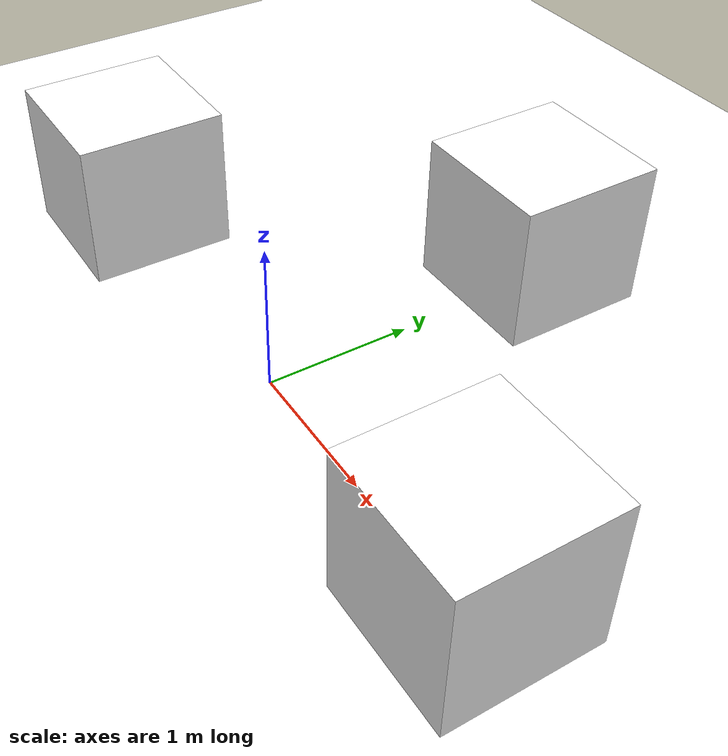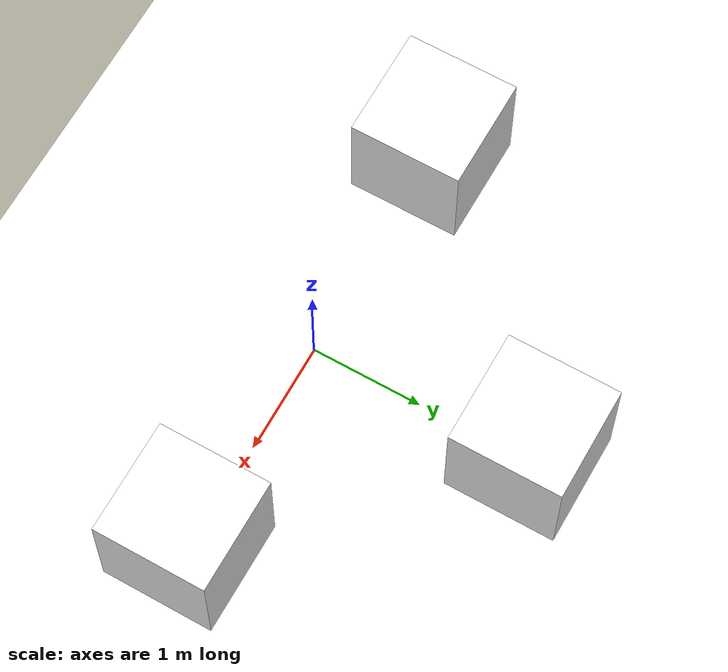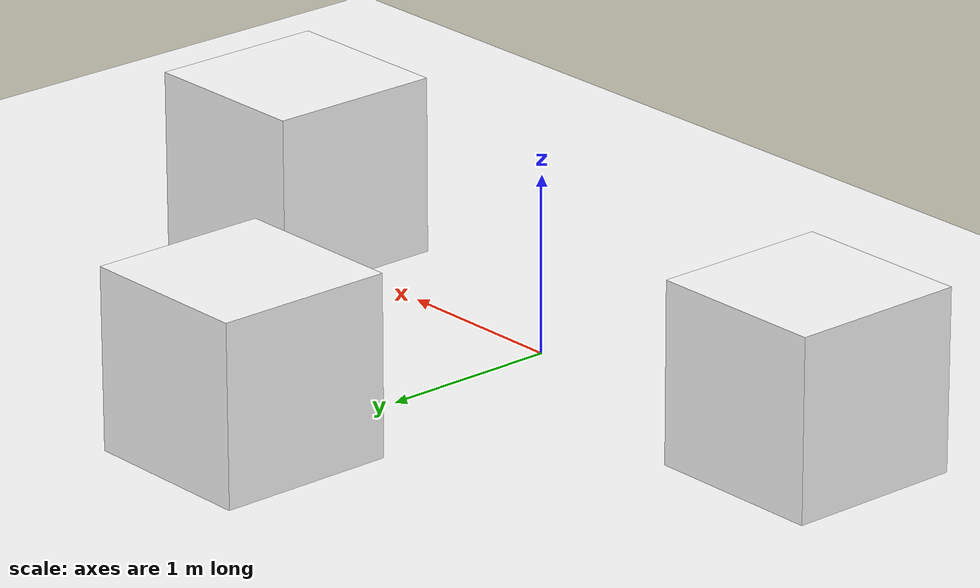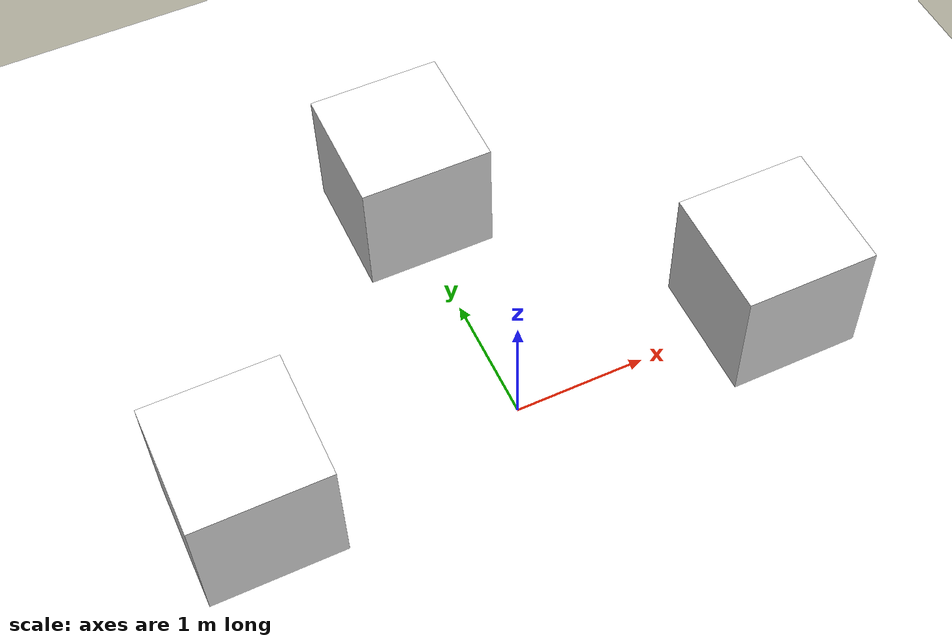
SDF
<?xml version="1.0" ?>
<sdf version="1.10">
  <world name="default">
    <gravity>0 0 -9.8000000000000007</gravity>
    <magnetic_field>6.0000000000000002e-06 2.3e-05 -4.1999999999999998e-05</magnetic_field>
    <atmosphere type="adiabatic"/>
    <physics type="ode">
      <max_step_size>0.001</max_step_size>
      <real_time_factor>1</real_time_factor>
      <real_time_update_rate>1000</real_time_update_rate>
    </physics>

    <scene>
      <ambient>0.400000006 0.400000006 0.400000006 1</ambient>
      <background>0.699999988 0.699999988 0.699999988 1</background>
      <shadows>true</shadows>
    </scene>

    <audio>
      <device>default</device>
    </audio>

    <spherical_coordinates>
      <surface_model>EARTH_WGS84</surface_model>
      <latitude_deg>0</latitude_deg>
      <longitude_deg>0</longitude_deg>
      <elevation>0</elevation>
      <heading_deg>0</heading_deg>
    </spherical_coordinates>

    <gui fullscreen="false">
      <camera name="user_camera">
        <pose>-1.58866 -7.3818400000000004 7.1969500000000002 0 0.66180000000000061 1.0642600000000004</pose>
        <view_controller>orbit</view_controller>
        <projection_type>perspective</projection_type>
      </camera>
    </gui>

    <light name="sun" type="directional">
      <pose>0 0 10 0 0 0</pose>
      <cast_shadows>true</cast_shadows>
      <intensity>1</intensity>
      <direction>-0.5 0.10000000000000001 -0.90000000000000002</direction>
      <diffuse>0.800000012 0.800000012 0.800000012 1</diffuse>
      <specular>0.200000003 0.200000003 0.200000003 1</specular>
      <attenuation>
        <range>1000</range>
        <linear>0.01</linear>
        <constant>0.90000000000000002</constant>
        <quadratic>0.001</quadratic>
      </attenuation>
    </light>

    <light name="pointlight" type="point">
      <pose>0.35389590697512352 0.16178236750752895 2 0 0 0</pose>
      <cast_shadows>false</cast_shadows>
      <intensity>1</intensity>
      <diffuse>0.5 0.5 0.5 1</diffuse>
      <specular>0.5 0.5 0.5 1</specular>
      <attenuation>
        <range>4</range>
        <linear>0.5</linear>
        <constant>0.20000000000000001</constant>
        <quadratic>0.01</quadratic>
      </attenuation>
    </light>

    <!-- 25x25 white floor -->
    <include>
      <uri>model://labeled_floor</uri>
      <pose>0 0 0 0 0 0</pose>
    </include>

        <!-- labeled boxes -->
    <include>
      <uri>model://labeled_box_a</uri>
      <name>labeled_box_a</name>
      <pose>-2 0 0 0 0 0</pose>
    </include>

    <include>
      <uri>model://labeled_box_b</uri>
      <name>labeled_box_b</name>
      <pose>0 2 0 0 0 0</pose>
    </include>

    <include>
      <uri>model://labeled_box_c</uri>
      <name>labeled_box_c</name>
      <pose>2 0 0 0 0 0</pose>
    </include>

  </world>
</sdf>

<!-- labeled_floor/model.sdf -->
<sdf version="1.10">
  <model name="labeled_floor">
    <static>true</static>
    <link name="floor_link">
      <collision name="collision">
        <pose>0 0 -0.01 0 0 0</pose>
        <geometry>
          <box><size>25 25 0.02</size></box>
        </geometry>
      </collision>
      <visual name="visual">
        <pose>0 0 -0.01 0 0 0</pose>
        <geometry>
          <box><size>25 25 0.02</size></box>
        </geometry>
        <cast_shadows>false</cast_shadows>
        <material>
          <ambient>1 1 1 1</ambient>
          <diffuse>1 1 1 1</diffuse>
          <specular>0.05 0.05 0.05 1</specular>
        </material>
      </visual>
    </link>
  </model>
</sdf>

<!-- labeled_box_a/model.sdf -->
<sdf version="1.10">
  <model name="labeled_box_a">
    <static>true</static>
    <link name="link">
      <pose>0 0 0.5 0 0 0</pose>
      <collision name="collision">
        <geometry><box><size>1 1 1</size></box></geometry>
      </collision>
      <visual name="visual">
        <geometry><box><size>1 1 1</size></box></geometry>
        <material>
          <ambient>1 1 1 1</ambient>
          <diffuse>1 1 1 1</diffuse>
          <pbr>
            <metal>
              <albedo_map>model://labeled_box_a/materials/textures/label_a.png</albedo_map>
              <metalness>0.0</metalness>
              <roughness>1.0</roughness>
            </metal>
          </pbr>
        </material>
      </visual>
    </link>
  </model>
</sdf>

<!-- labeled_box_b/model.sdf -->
<sdf version="1.10">
  <model name="labeled_box_b">
    <static>true</static>
    <link name="link">
      <pose>0 0 0.5 0 0 0</pose>
      <collision name="collision">
        <geometry><box><size>1 1 1</size></box></geometry>
      </collision>
      <visual name="visual">
        <geometry><box><size>1 1 1</size></box></geometry>
        <material>
          <ambient>1 1 1 1</ambient>
          <diffuse>1 1 1 1</diffuse>
          <pbr>
            <metal>
              <albedo_map>model://labeled_box_b/materials/textures/label_b.png</albedo_map>
              <metalness>0.0</metalness>
              <roughness>1.0</roughness>
            </metal>
          </pbr>
        </material>
      </visual>
    </link>
  </model>
</sdf>

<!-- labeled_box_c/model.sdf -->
<sdf version="1.10">
  <model name="labeled_box_c">
    <static>true</static>
    <link name="link">
      <pose>0 0 0.5 0 0 0</pose>
      <collision name="collision">
        <geometry><box><size>1 1 1</size></box></geometry>
      </collision>
      <visual name="visual">
        <geometry><box><size>1 1 1</size></box></geometry>
        <material>
          <ambient>1 1 1 1</ambient>
          <diffuse>1 1 1 1</diffuse>
          <pbr>
            <metal>
              <albedo_map>model://labeled_box_c/materials/textures/label_c.png</albedo_map>
              <metalness>0.0</metalness>
              <roughness>1.0</roughness>
            </metal>
          </pbr>
        </material>
      </visual>
    </link>
  </model>
</sdf>
